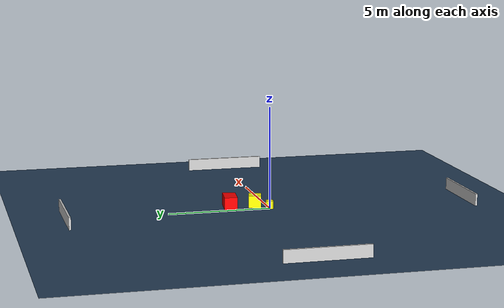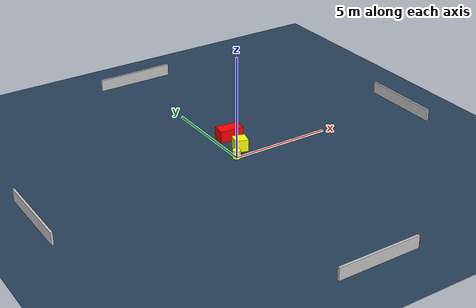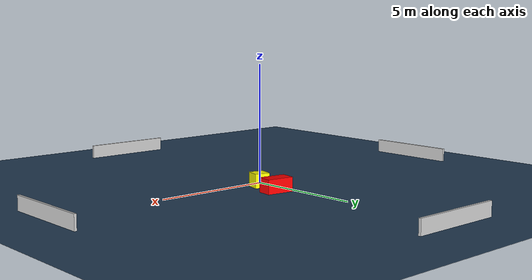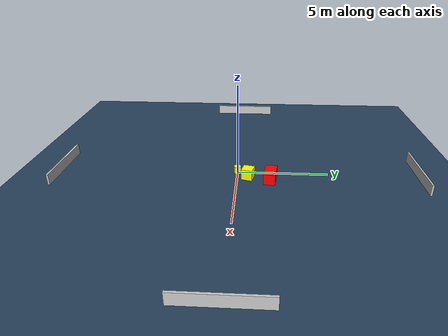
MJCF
<?xml version="1.0" ?>
<mujoco model="generated_environment">
  <option timestep="0.01" integrator="RK4" cone="elliptic"/>
  <default>
    <geom density="1"/>
  </default>
  <asset>
    <texture builtin="gradient" height="3072" name="skybox" rgb1="0.3 0.5 0.7" rgb2="0 0 0" type="skybox" width="512"/>
    <texture builtin="checker" height="300" name="groundplane" rgb1="0.2 0.3 0.4" rgb2="0.1 0.2 0.3" type="2d" width="300"/>
    <material name="groundplane" reflectance="0.2" texrepeat="5 5" texture="groundplane"/>
  </asset>
  <worldbody>
    <light dir="0 0 -1" directional="true" pos="0 0 1.5"/>
    <geom condim="3" friction="0.5 0.005 0.001" material="groundplane" name="floor" pos="0 0 0" size="0 0 0.05" type="plane"/>
    <body name="walls">
      <geom name="wall_1" condim="4" pos="-10.0 0.0 0.3" rgba="0.800000011920929 0.800000011920929 0.800000011920929 1.0" size="0.05 2.0 0.3" type="box"/>
      <geom name="wall_2" condim="4" pos="10.0 0.0 0.3" rgba="0.800000011920929 0.800000011920929 0.800000011920929 1.0" size="0.05 2.0 0.3" type="box"/>
      <geom name="wall_3" condim="4" pos="0.0 -10.0 0.3" rgba="0.800000011920929 0.800000011920929 0.800000011920929 1.0" size="2.0 0.05 0.3" type="box"/>
      <geom name="wall_4" condim="4" pos="0.0 10.0 0.3" rgba="0.800000011920929 0.800000011920929 0.800000011920929 1.0" size="2.0 0.05 0.3" type="box"/>
    </body>
    <body name="robot">
      <joint name="joint_x" type="slide" pos="0 0 0" axis="1 0 0"/>
      <joint name="joint_y" type="slide" pos="0 0 0" axis="0 1 0"/>
      <geom name="robot" type="cylinder" pos="0.0 0.0 0.2" size="0.2 0.2 0.0" mass="5.0" friction="1.0 0.005 0.0001" condim="4" rgba="1.0 1.0 0.0 1.0"/>
    </body>
    <body name="obstacle_1_movable">
      <geom name="obstacle_1_movable" condim="4" pos="0.5825068059454723 0.6006704967348446 0.3" euler="0 0 345.5751693843181" friction="0.0 0.005 0.001" rgba="1.0 1.0 0.0 1.0" size="0.31784121345594907 0.30337346334238063 0.3" type="box" mass="0.1"/>
      <joint type="free"/>
    </body>
    <body name="obstacle_2_static">
      <geom name="obstacle_2_static" condim="4" pos="0.7589347400874055 1.8225328369995042 0.3" euler="0 0 262.803798209314" friction="0.0 0.005 0.001" rgba="1.0 0.0 0.0 1.0" size="0.3175959402214789 0.5900572153900456 0.3" type="box"/>
    </body>
  </worldbody>
  <actuator>
    <motor name="actuator_x" joint="joint_x" gear="1" ctrlrange="-1 1"/>
    <motor name="actuator_y" joint="joint_y" gear="1" ctrlrange="-1 1"/>
  </actuator>
</mujoco>
